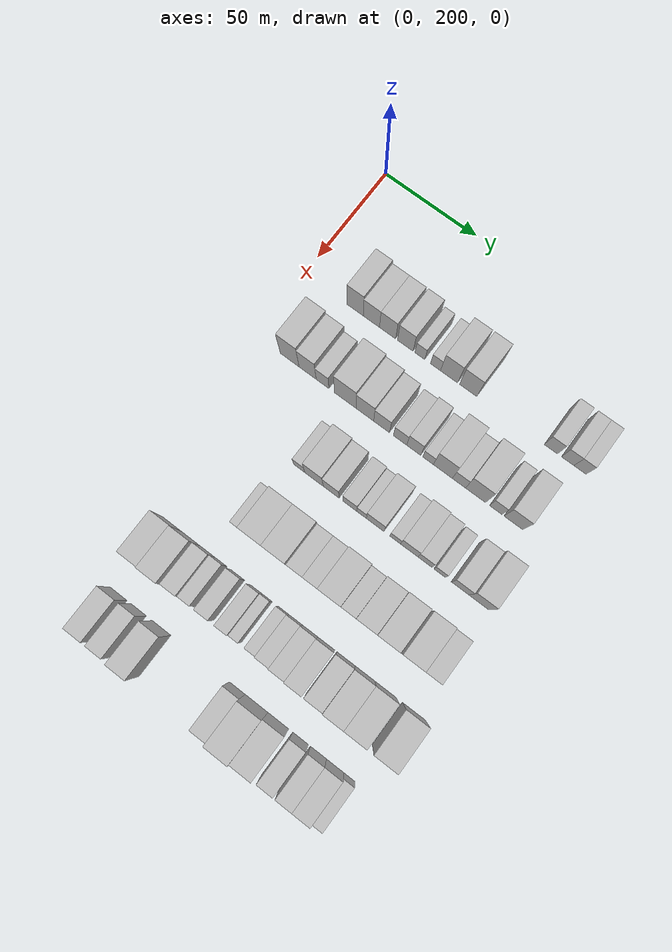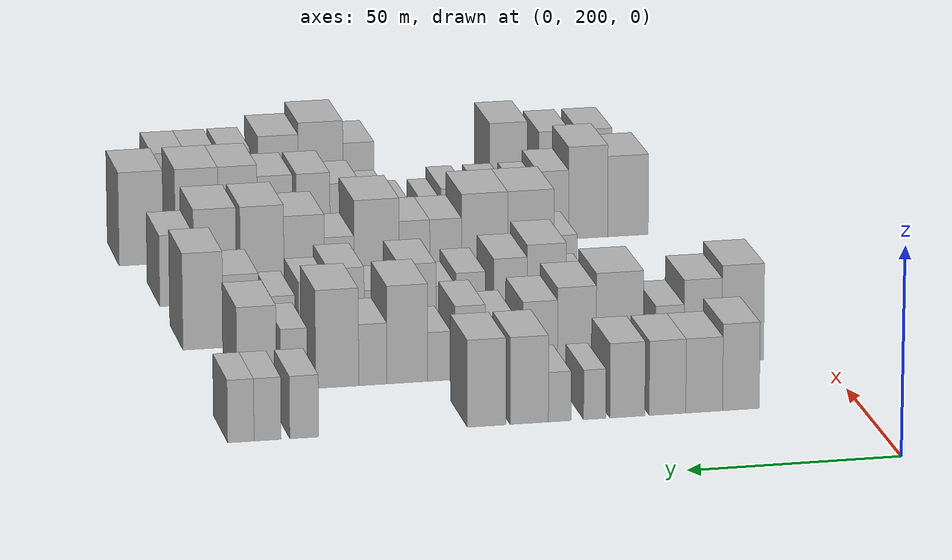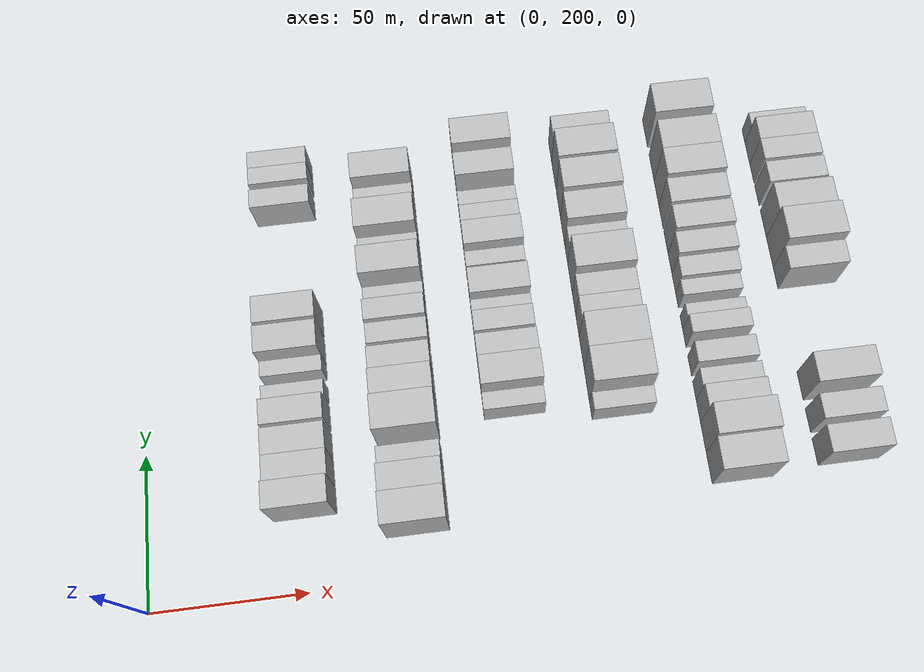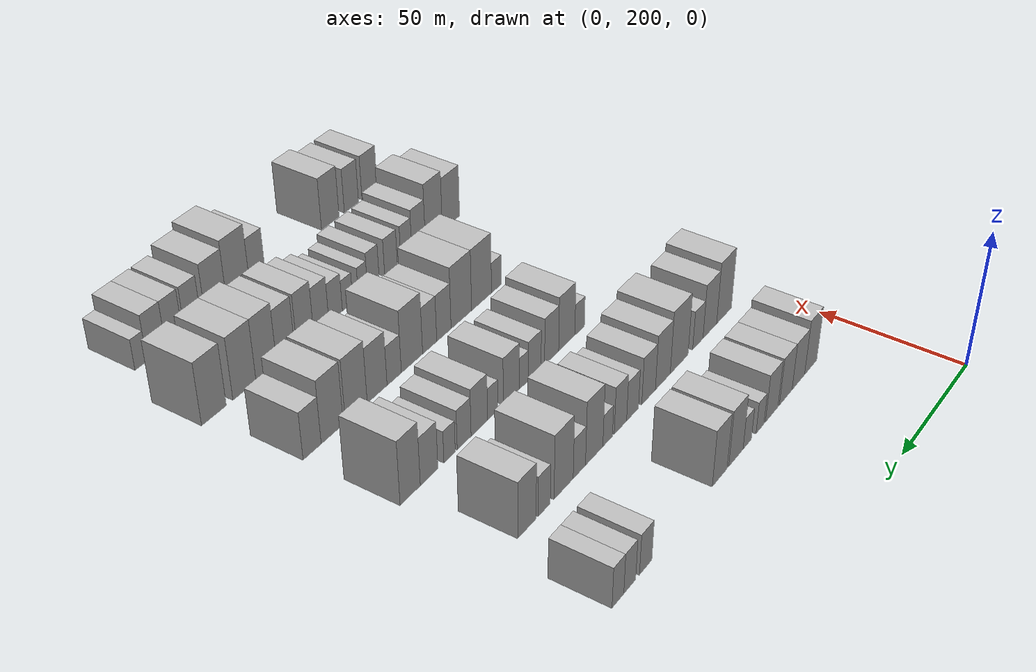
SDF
<sdf version="1.6">
 <world name="default">
  <model name="building_83">
   <static>1</static>
   <pose>50.0000 227.8729 0 0.000000 0.000000 0.000000</pose>
   <link name="link">
    <pose>0 0 10.50 0 0 0</pose>
    <collision name="collision"><geometry><box><size>20.0000 8.7429 21.0000</size></box></geometry></collision>
    <visual name="visual">
     <cast_shadows>0</cast_shadows>
     <geometry><box><size>20.0000 8.7429 21.0000</size></box></geometry>
     <material>
      <script>
       <uri>model://HANNAS_wall/materials/scripts</uri>
       <uri>model://HANNAS_wall/materials/textures</uri>
       <name>vrc/HANNAS_wall</name>
      </script>
     </material>
    </visual>
   </link>
  </model>
  <model name="building_84">
   <static>1</static>
   <pose>50.0000 236.6198 0 0.000000 0.000000 0.000000</pose>
   <link name="link">
    <pose>0 0 9.00 0 0 0</pose>
    <collision name="collision"><geometry><box><size>20.0000 8.7509 18.0000</size></box></geometry></collision>
    <visual name="visual">
     <cast_shadows>0</cast_shadows>
     <geometry><box><size>20.0000 8.7509 18.0000</size></box></geometry>
     <material>
      <script>
       <uri>model://HANNAS_wall/materials/scripts</uri>
       <uri>model://HANNAS_wall/materials/textures</uri>
       <name>vrc/HANNAS_wall</name>
      </script>
     </material>
    </visual>
   </link>
  </model>
  <model name="building_85">
   <static>1</static>
   <pose>50.0000 245.3287 0 0.000000 0.000000 0.000000</pose>
   <link name="link">
    <pose>0 0 9.00 0 0 0</pose>
    <collision name="collision"><geometry><box><size>20.0000 8.6668 18.0000</size></box></geometry></collision>
    <visual name="visual">
     <cast_shadows>0</cast_shadows>
     <geometry><box><size>20.0000 8.6668 18.0000</size></box></geometry>
     <material>
      <script>
       <uri>model://HANNAS_wall/materials/scripts</uri>
       <uri>model://HANNAS_wall/materials/textures</uri>
       <name>vrc/HANNAS_wall</name>
      </script>
     </material>
    </visual>
   </link>
  </model>
  <model name="building_86">
   <static>1</static>
   <pose>50.0000 254.8167 0 0.000000 0.000000 0.000000</pose>
   <link name="link">
    <pose>0 0 9.00 0 0 0</pose>
    <collision name="collision"><geometry><box><size>20.0000 8.3091 18.0000</size></box></geometry></collision>
    <visual name="visual">
     <cast_shadows>0</cast_shadows>
     <geometry><box><size>20.0000 8.3091 18.0000</size></box></geometry>
     <material>
      <script>
       <uri>model://HANNAS_wall/materials/scripts</uri>
       <uri>model://HANNAS_wall/materials/textures</uri>
       <name>vrc/HANNAS_wall</name>
      </script>
     </material>
    </visual>
   </link>
  </model>
  <model name="building_87">
   <static>1</static>
   <pose>50.0000 262.5719 0 0.000000 0.000000 0.000000</pose>
   <link name="link">
    <pose>0 0 6.00 0 0 0</pose>
    <collision name="collision"><geometry><box><size>20.0000 5.2014 12.0000</size></box></geometry></collision>
    <visual name="visual">
     <cast_shadows>0</cast_shadows>
     <geometry><box><size>20.0000 5.2014 12.0000</size></box></geometry>
     <material>
      <script>
       <uri>model://HANNAS_wall/materials/scripts</uri>
       <uri>model://HANNAS_wall/materials/textures</uri>
       <name>vrc/HANNAS_wall</name>
      </script>
     </material>
    </visual>
   </link>
  </model>
  <model name="building_88">
   <static>1</static>
   <pose>50.0000 270.8324 0 0.000000 0.000000 0.000000</pose>
   <link name="link">
    <pose>0 0 6.00 0 0 0</pose>
    <collision name="collision"><geometry><box><size>20.0000 5.3197 12.0000</size></box></geometry></collision>
    <visual name="visual">
     <cast_shadows>0</cast_shadows>
     <geometry><box><size>20.0000 5.3197 12.0000</size></box></geometry>
     <material>
      <script>
       <uri>model://HANNAS_wall/materials/scripts</uri>
       <uri>model://HANNAS_wall/materials/textures</uri>
       <name>vrc/HANNAS_wall</name>
      </script>
     </material>
    </visual>
   </link>
  </model>
  <model name="building_89">
   <static>1</static>
   <pose>50.0000 277.9955 0 0.000000 0.000000 0.000000</pose>
   <link name="link">
    <pose>0 0 10.50 0 0 0</pose>
    <collision name="collision"><geometry><box><size>20.0000 9.0065 21.0000</size></box></geometry></collision>
    <visual name="visual">
     <cast_shadows>0</cast_shadows>
     <geometry><box><size>20.0000 9.0065 21.0000</size></box></geometry>
     <material>
      <script>
       <uri>model://HANNAS_wall/materials/scripts</uri>
       <uri>model://HANNAS_wall/materials/textures</uri>
       <name>vrc/HANNAS_wall</name>
      </script>
     </material>
    </visual>
   </link>
  </model>
  <model name="building_90">
   <static>1</static>
   <pose>50.0000 288.0217 0 0.000000 0.000000 0.000000</pose>
   <link name="link">
    <pose>0 0 10.50 0 0 0</pose>
    <collision name="collision"><geometry><box><size>20.0000 9.0459 21.0000</size></box></geometry></collision>
    <visual name="visual">
     <cast_shadows>0</cast_shadows>
     <geometry><box><size>20.0000 9.0459 21.0000</size></box></geometry>
     <material>
      <script>
       <uri>model://HANNAS_wall/materials/scripts</uri>
       <uri>model://HANNAS_wall/materials/textures</uri>
       <name>vrc/HANNAS_wall</name>
      </script>
     </material>
    </visual>
   </link>
  </model>
  <model name="building_91">
   <static>1</static>
   <pose>50.0000 330.6306 0 0.000000 0.000000 0.000000</pose>
   <link name="link">
    <pose>0 0 7.50 0 0 0</pose>
    <collision name="collision"><geometry><box><size>20.0000 6.7240 15.0000</size></box></geometry></collision>
    <visual name="visual">
     <cast_shadows>0</cast_shadows>
     <geometry><box><size>20.0000 6.7240 15.0000</size></box></geometry>
     <material>
      <script>
       <uri>model://HANNAS_wall/materials/scripts</uri>
       <uri>model://HANNAS_wall/materials/textures</uri>
       <name>vrc/HANNAS_wall</name>
      </script>
     </material>
    </visual>
   </link>
  </model>
  <model name="building_92">
   <static>1</static>
   <pose>50.0000 339.1388 0 0.000000 0.000000 0.000000</pose>
   <link name="link">
    <pose>0 0 7.50 0 0 0</pose>
    <collision name="collision"><geometry><box><size>20.0000 6.2924 15.0000</size></box></geometry></collision>
    <visual name="visual">
     <cast_shadows>0</cast_shadows>
     <geometry><box><size>20.0000 6.2924 15.0000</size></box></geometry>
     <material>
      <script>
       <uri>model://HANNAS_wall/materials/scripts</uri>
       <uri>model://HANNAS_wall/materials/textures</uri>
       <name>vrc/HANNAS_wall</name>
      </script>
     </material>
    </visual>
   </link>
  </model>
  <model name="building_93">
   <static>1</static>
   <pose>50.0000 345.3433 0 0.000000 0.000000 0.000000</pose>
   <link name="link">
    <pose>0 0 7.50 0 0 0</pose>
    <collision name="collision"><geometry><box><size>20.0000 6.1166 15.0000</size></box></geometry></collision>
    <visual name="visual">
     <cast_shadows>0</cast_shadows>
     <geometry><box><size>20.0000 6.1166 15.0000</size></box></geometry>
     <material>
      <script>
       <uri>model://HANNAS_wall/materials/scripts</uri>
       <uri>model://HANNAS_wall/materials/textures</uri>
       <name>vrc/HANNAS_wall</name>
      </script>
     </material>
    </visual>
   </link>
  </model>
  <model name="building_198">
   <static>1</static>
   <pose>85.0000 219.0304 0 0.000000 0.000000 0.000000</pose>
   <link name="link">
    <pose>0 0 12.00 0 0 0</pose>
    <collision name="collision"><geometry><box><size>20.0000 10.1866 24.0000</size></box></geometry></collision>
    <visual name="visual">
     <cast_shadows>0</cast_shadows>
     <geometry><box><size>20.0000 10.1866 24.0000</size></box></geometry>
     <material>
      <script>
       <uri>model://HANNAS_wall/materials/scripts</uri>
       <uri>model://HANNAS_wall/materials/textures</uri>
       <name>vrc/HANNAS_wall</name>
      </script>
     </material>
    </visual>
   </link>
  </model>
  <model name="building_199">
   <static>1</static>
   <pose>85.0000 228.7237 0 0.000000 0.000000 0.000000</pose>
   <link name="link">
    <pose>0 0 10.50 0 0 0</pose>
    <collision name="collision"><geometry><box><size>20.0000 9.1999 21.0000</size></box></geometry></collision>
    <visual name="visual">
     <cast_shadows>0</cast_shadows>
     <geometry><box><size>20.0000 9.1999 21.0000</size></box></geometry>
     <material>
      <script>
       <uri>model://HANNAS_wall/materials/scripts</uri>
       <uri>model://HANNAS_wall/materials/textures</uri>
       <name>vrc/HANNAS_wall</name>
      </script>
     </material>
    </visual>
   </link>
  </model>
  <model name="building_200">
   <static>1</static>
   <pose>85.0000 236.7289 0 0.000000 0.000000 0.000000</pose>
   <link name="link">
    <pose>0 0 7.50 0 0 0</pose>
    <collision name="collision"><geometry><box><size>20.0000 6.8105 15.0000</size></box></geometry></collision>
    <visual name="visual">
     <cast_shadows>0</cast_shadows>
     <geometry><box><size>20.0000 6.8105 15.0000</size></box></geometry>
     <material>
      <script>
       <uri>model://HANNAS_wall/materials/scripts</uri>
       <uri>model://HANNAS_wall/materials/textures</uri>
       <name>vrc/HANNAS_wall</name>
      </script>
     </material>
    </visual>
   </link>
  </model>
  <model name="building_201">
   <static>1</static>
   <pose>85.0000 248.8374 0 0.000000 0.000000 0.000000</pose>
   <link name="link">
    <pose>0 0 12.00 0 0 0</pose>
    <collision name="collision"><geometry><box><size>20.0000 11.4065 24.0000</size></box></geometry></collision>
    <visual name="visual">
     <cast_shadows>0</cast_shadows>
     <geometry><box><size>20.0000 11.4065 24.0000</size></box></geometry>
     <material>
      <script>
       <uri>model://HANNAS_wall/materials/scripts</uri>
       <uri>model://HANNAS_wall/materials/textures</uri>
       <name>vrc/HANNAS_wall</name>
      </script>
     </material>
    </visual>
   </link>
  </model>
  <model name="building_202">
   <static>1</static>
   <pose>85.0000 259.1998 0 0.000000 0.000000 0.000000</pose>
   <link name="link">
    <pose>0 0 10.50 0 0 0</pose>
    <collision name="collision"><geometry><box><size>20.0000 9.3182 21.0000</size></box></geometry></collision>
    <visual name="visual">
     <cast_shadows>0</cast_shadows>
     <geometry><box><size>20.0000 9.3182 21.0000</size></box></geometry>
     <material>
      <script>
       <uri>model://HANNAS_wall/materials/scripts</uri>
       <uri>model://HANNAS_wall/materials/textures</uri>
       <name>vrc/HANNAS_wall</name>
      </script>
     </material>
    </visual>
   </link>
  </model>
  <model name="building_203">
   <static>1</static>
   <pose>85.0000 268.0156 0 0.000000 0.000000 0.000000</pose>
   <link name="link">
    <pose>0 0 9.00 0 0 0</pose>
    <collision name="collision"><geometry><box><size>20.0000 8.3135 18.0000</size></box></geometry></collision>
    <visual name="visual">
     <cast_shadows>0</cast_shadows>
     <geometry><box><size>20.0000 8.3135 18.0000</size></box></geometry>
     <material>
      <script>
       <uri>model://HANNAS_wall/materials/scripts</uri>
       <uri>model://HANNAS_wall/materials/textures</uri>
       <name>vrc/HANNAS_wall</name>
      </script>
     </material>
    </visual>
   </link>
  </model>
  <model name="building_204">
   <static>1</static>
   <pose>85.0000 277.6977 0 0.000000 0.000000 0.000000</pose>
   <link name="link">
    <pose>0 0 7.50 0 0 0</pose>
    <collision name="collision"><geometry><box><size>20.0000 7.0507 15.0000</size></box></geometry></collision>
    <visual name="visual">
     <cast_shadows>0</cast_shadows>
     <geometry><box><size>20.0000 7.0507 15.0000</size></box></geometry>
     <material>
      <script>
       <uri>model://HANNAS_wall/materials/scripts</uri>
       <uri>model://HANNAS_wall/materials/textures</uri>
       <name>vrc/HANNAS_wall</name>
      </script>
     </material>
    </visual>
   </link>
  </model>
  <model name="building_205">
   <static>1</static>
   <pose>85.0000 284.8364 0 0.000000 0.000000 0.000000</pose>
   <link name="link">
    <pose>0 0 9.00 0 0 0</pose>
    <collision name="collision"><geometry><box><size>20.0000 7.2267 18.0000</size></box></geometry></collision>
    <visual name="visual">
     <cast_shadows>0</cast_shadows>
     <geometry><box><size>20.0000 7.2267 18.0000</size></box></geometry>
     <material>
      <script>
       <uri>model://HANNAS_wall/materials/scripts</uri>
       <uri>model://HANNAS_wall/materials/textures</uri>
       <name>vrc/HANNAS_wall</name>
      </script>
     </material>
    </visual>
   </link>
  </model>
  <model name="building_206">
   <static>1</static>
   <pose>85.0000 292.2120 0 0.000000 0.000000 0.000000</pose>
   <link name="link">
    <pose>0 0 6.00 0 0 0</pose>
    <collision name="collision"><geometry><box><size>20.0000 5.5244 12.0000</size></box></geometry></collision>
    <visual name="visual">
     <cast_shadows>0</cast_shadows>
     <geometry><box><size>20.0000 5.5244 12.0000</size></box></geometry>
     <material>
      <script>
       <uri>model://HANNAS_wall/materials/scripts</uri>
       <uri>model://HANNAS_wall/materials/textures</uri>
       <name>vrc/HANNAS_wall</name>
      </script>
     </material>
    </visual>
   </link>
  </model>
  <model name="building_207">
   <static>1</static>
   <pose>85.0000 299.8462 0 0.000000 0.000000 0.000000</pose>
   <link name="link">
    <pose>0 0 12.00 0 0 0</pose>
    <collision name="collision"><geometry><box><size>20.0000 9.7439 24.0000</size></box></geometry></collision>
    <visual name="visual">
     <cast_shadows>0</cast_shadows>
     <geometry><box><size>20.0000 9.7439 24.0000</size></box></geometry>
     <material>
      <script>
       <uri>model://HANNAS_wall/materials/scripts</uri>
       <uri>model://HANNAS_wall/materials/textures</uri>
       <name>vrc/HANNAS_wall</name>
      </script>
     </material>
    </visual>
   </link>
  </model>
  <model name="building_208">
   <static>1</static>
   <pose>85.0000 308.0923 0 0.000000 0.000000 0.000000</pose>
   <link name="link">
    <pose>0 0 7.50 0 0 0</pose>
    <collision name="collision"><geometry><box><size>20.0000 6.7483 15.0000</size></box></geometry></collision>
    <visual name="visual">
     <cast_shadows>0</cast_shadows>
     <geometry><box><size>20.0000 6.7483 15.0000</size></box></geometry>
     <material>
      <script>
       <uri>model://HANNAS_wall/materials/scripts</uri>
       <uri>model://HANNAS_wall/materials/textures</uri>
       <name>vrc/HANNAS_wall</name>
      </script>
     </material>
    </visual>
   </link>
  </model>
  <model name="building_209">
   <static>1</static>
   <pose>85.0000 316.5838 0 0.000000 0.000000 0.000000</pose>
   <link name="link">
    <pose>0 0 12.00 0 0 0</pose>
    <collision name="collision"><geometry><box><size>20.0000 10.2347 24.0000</size></box></geometry></collision>
    <visual name="visual">
     <cast_shadows>0</cast_shadows>
     <geometry><box><size>20.0000 10.2347 24.0000</size></box></geometry>
     <material>
      <script>
       <uri>model://HANNAS_wall/materials/scripts</uri>
       <uri>model://HANNAS_wall/materials/textures</uri>
       <name>vrc/HANNAS_wall</name>
      </script>
     </material>
    </visual>
   </link>
  </model>
  <model name="building_210">
   <static>1</static>
   <pose>85.0000 326.8590 0 0.000000 0.000000 0.000000</pose>
   <link name="link">
    <pose>0 0 7.50 0 0 0</pose>
    <collision name="collision"><geometry><box><size>20.0000 6.3158 15.0000</size></box></geometry></collision>
    <visual name="visual">
     <cast_shadows>0</cast_shadows>
     <geometry><box><size>20.0000 6.3158 15.0000</size></box></geometry>
     <material>
      <script>
       <uri>model://HANNAS_wall/materials/scripts</uri>
       <uri>model://HANNAS_wall/materials/textures</uri>
       <name>vrc/HANNAS_wall</name>
      </script>
     </material>
    </visual>
   </link>
  </model>
  <model name="building_211">
   <static>1</static>
   <pose>85.0000 335.6885 0 0.000000 0.000000 0.000000</pose>
   <link name="link">
    <pose>0 0 10.50 0 0 0</pose>
    <collision name="collision"><geometry><box><size>20.0000 9.3431 21.0000</size></box></geometry></collision>
    <visual name="visual">
     <cast_shadows>0</cast_shadows>
     <geometry><box><size>20.0000 9.3431 21.0000</size></box></geometry>
     <material>
      <script>
       <uri>model://HANNAS_wall/materials/scripts</uri>
       <uri>model://HANNAS_wall/materials/textures</uri>
       <name>vrc/HANNAS_wall</name>
      </script>
     </material>
    </visual>
   </link>
  </model>
  <model name="building_324">
   <static>1</static>
   <pose>120.0000 251.2438 0 0.000000 0.000000 0.000000</pose>
   <link name="link">
    <pose>0 0 6.00 0 0 0</pose>
    <collision name="collision"><geometry><box><size>20.0000 5.8592 12.0000</size></box></geometry></collision>
    <visual name="visual">
     <cast_shadows>0</cast_shadows>
     <geometry><box><size>20.0000 5.8592 12.0000</size></box></geometry>
     <material>
      <script>
       <uri>model://HANNAS_wall/materials/scripts</uri>
       <uri>model://HANNAS_wall/materials/textures</uri>
       <name>vrc/HANNAS_wall</name>
      </script>
     </material>
    </visual>
   </link>
  </model>
  <model name="building_325">
   <static>1</static>
   <pose>120.0000 258.9953 0 0.000000 0.000000 0.000000</pose>
   <link name="link">
    <pose>0 0 10.50 0 0 0</pose>
    <collision name="collision"><geometry><box><size>20.0000 9.6438 21.0000</size></box></geometry></collision>
    <visual name="visual">
     <cast_shadows>0</cast_shadows>
     <geometry><box><size>20.0000 9.6438 21.0000</size></box></geometry>
     <material>
      <script>
       <uri>model://HANNAS_wall/materials/scripts</uri>
       <uri>model://HANNAS_wall/materials/textures</uri>
       <name>vrc/HANNAS_wall</name>
      </script>
     </material>
    </visual>
   </link>
  </model>
  <model name="building_326">
   <static>1</static>
   <pose>120.0000 267.9271 0 0.000000 0.000000 0.000000</pose>
   <link name="link">
    <pose>0 0 9.00 0 0 0</pose>
    <collision name="collision"><geometry><box><size>20.0000 8.2197 18.0000</size></box></geometry></collision>
    <visual name="visual">
     <cast_shadows>0</cast_shadows>
     <geometry><box><size>20.0000 8.2197 18.0000</size></box></geometry>
     <material>
      <script>
       <uri>model://HANNAS_wall/materials/scripts</uri>
       <uri>model://HANNAS_wall/materials/textures</uri>
       <name>vrc/HANNAS_wall</name>
      </script>
     </material>
    </visual>
   </link>
  </model>
  <model name="building_327">
   <static>1</static>
   <pose>120.0000 277.6466 0 0.000000 0.000000 0.000000</pose>
   <link name="link">
    <pose>0 0 7.50 0 0 0</pose>
    <collision name="collision"><geometry><box><size>20.0000 7.2193 15.0000</size></box></geometry></collision>
    <visual name="visual">
     <cast_shadows>0</cast_shadows>
     <geometry><box><size>20.0000 7.2193 15.0000</size></box></geometry>
     <material>
      <script>
       <uri>model://HANNAS_wall/materials/scripts</uri>
       <uri>model://HANNAS_wall/materials/textures</uri>
       <name>vrc/HANNAS_wall</name>
      </script>
     </material>
    </visual>
   </link>
  </model>
  <model name="building_328">
   <static>1</static>
   <pose>120.0000 283.7082 0 0.000000 0.000000 0.000000</pose>
   <link name="link">
    <pose>0 0 6.00 0 0 0</pose>
    <collision name="collision"><geometry><box><size>20.0000 4.9041 12.0000</size></box></geometry></collision>
    <visual name="visual">
     <cast_shadows>0</cast_shadows>
     <geometry><box><size>20.0000 4.9041 12.0000</size></box></geometry>
     <material>
      <script>
       <uri>model://HANNAS_wall/materials/scripts</uri>
       <uri>model://HANNAS_wall/materials/textures</uri>
       <name>vrc/HANNAS_wall</name>
      </script>
     </material>
    </visual>
   </link>
  </model>
  <model name="building_329">
   <static>1</static>
   <pose>120.0000 290.6523 0 0.000000 0.000000 0.000000</pose>
   <link name="link">
    <pose>0 0 9.00 0 0 0</pose>
    <collision name="collision"><geometry><box><size>20.0000 8.9841 18.0000</size></box></geometry></collision>
    <visual name="visual">
     <cast_shadows>0</cast_shadows>
     <geometry><box><size>20.0000 8.9841 18.0000</size></box></geometry>
     <material>
      <script>
       <uri>model://HANNAS_wall/materials/scripts</uri>
       <uri>model://HANNAS_wall/materials/textures</uri>
       <name>vrc/HANNAS_wall</name>
      </script>
     </material>
    </visual>
   </link>
  </model>
  <model name="building_330">
   <static>1</static>
   <pose>120.0000 300.8932 0 0.000000 0.000000 0.000000</pose>
   <link name="link">
    <pose>0 0 6.00 0 0 0</pose>
    <collision name="collision"><geometry><box><size>20.0000 5.4976 12.0000</size></box></geometry></collision>
    <visual name="visual">
     <cast_shadows>0</cast_shadows>
     <geometry><box><size>20.0000 5.4976 12.0000</size></box></geometry>
     <material>
      <script>
       <uri>model://HANNAS_wall/materials/scripts</uri>
       <uri>model://HANNAS_wall/materials/textures</uri>
       <name>vrc/HANNAS_wall</name>
      </script>
     </material>
    </visual>
   </link>
  </model>
  <model name="building_331">
   <static>1</static>
   <pose>120.0000 307.9859 0 0.000000 0.000000 0.000000</pose>
   <link name="link">
    <pose>0 0 9.00 0 0 0</pose>
    <collision name="collision"><geometry><box><size>20.0000 8.6878 18.0000</size></box></geometry></collision>
    <visual name="visual">
     <cast_shadows>0</cast_shadows>
     <geometry><box><size>20.0000 8.6878 18.0000</size></box></geometry>
     <material>
      <script>
       <uri>model://HANNAS_wall/materials/scripts</uri>
       <uri>model://HANNAS_wall/materials/textures</uri>
       <name>vrc/HANNAS_wall</name>
      </script>
     </material>
    </visual>
   </link>
  </model>
  <model name="building_332">
   <static>1</static>
   <pose>120.0000 315.9016 0 0.000000 0.000000 0.000000</pose>
   <link name="link">
    <pose>0 0 7.50 0 0 0</pose>
    <collision name="collision"><geometry><box><size>20.0000 7.1436 15.0000</size></box></geometry></collision>
    <visual name="visual">
     <cast_shadows>0</cast_shadows>
     <geometry><box><size>20.0000 7.1436 15.0000</size></box></geometry>
     <material>
      <script>
       <uri>model://HANNAS_wall/materials/scripts</uri>
       <uri>model://HANNAS_wall/materials/textures</uri>
       <name>vrc/HANNAS_wall</name>
      </script>
     </material>
    </visual>
   </link>
  </model>
  <model name="building_333">
   <static>1</static>
   <pose>120.0000 323.3427 0 0.000000 0.000000 0.000000</pose>
   <link name="link">
    <pose>0 0 6.00 0 0 0</pose>
    <collision name="collision"><geometry><box><size>20.0000 5.7386 12.0000</size></box></geometry></collision>
    <visual name="visual">
     <cast_shadows>0</cast_shadows>
     <geometry><box><size>20.0000 5.7386 12.0000</size></box></geometry>
     <material>
      <script>
       <uri>model://HANNAS_wall/materials/scripts</uri>
       <uri>model://HANNAS_wall/materials/textures</uri>
       <name>vrc/HANNAS_wall</name>
      </script>
     </material>
    </visual>
   </link>
  </model>
  <model name="building_334">
   <static>1</static>
   <pose>120.0000 333.5266 0 0.000000 0.000000 0.000000</pose>
   <link name="link">
    <pose>0 0 9.00 0 0 0</pose>
    <collision name="collision"><geometry><box><size>20.0000 8.6292 18.0000</size></box></geometry></collision>
    <visual name="visual">
     <cast_shadows>0</cast_shadows>
     <geometry><box><size>20.0000 8.6292 18.0000</size></box></geometry>
     <material>
      <script>
       <uri>model://HANNAS_wall/materials/scripts</uri>
       <uri>model://HANNAS_wall/materials/textures</uri>
       <name>vrc/HANNAS_wall</name>
      </script>
     </material>
    </visual>
   </link>
  </model>
  <model name="building_335">
   <static>1</static>
   <pose>120.0000 342.6895 0 0.000000 0.000000 0.000000</pose>
   <link name="link">
    <pose>0 0 12.00 0 0 0</pose>
    <collision name="collision"><geometry><box><size>20.0000 9.6968 24.0000</size></box></geometry></collision>
    <visual name="visual">
     <cast_shadows>0</cast_shadows>
     <geometry><box><size>20.0000 9.6968 24.0000</size></box></geometry>
     <material>
      <script>
       <uri>model://HANNAS_wall/materials/scripts</uri>
       <uri>model://HANNAS_wall/materials/textures</uri>
       <name>vrc/HANNAS_wall</name>
      </script>
     </material>
    </visual>
   </link>
  </model>
  <model name="building_452">
   <static>1</static>
   <pose>155.0000 246.8575 0 0.000000 0.000000 0.000000</pose>
   <link name="link">
    <pose>0 0 6.00 0 0 0</pose>
    <collision name="collision"><geometry><box><size>20.0000 5.8610 12.0000</size></box></geometry></collision>
    <visual name="visual">
     <cast_shadows>0</cast_shadows>
     <geometry><box><size>20.0000 5.8610 12.0000</size></box></geometry>
     <material>
      <script>
       <uri>model://HANNAS_wall/materials/scripts</uri>
       <uri>model://HANNAS_wall/materials/textures</uri>
       <name>vrc/HANNAS_wall</name>
      </script>
     </material>
    </visual>
   </link>
  </model>
  <model name="building_453">
   <static>1</static>
   <pose>155.0000 255.5591 0 0.000000 0.000000 0.000000</pose>
   <link name="link">
    <pose>0 0 12.00 0 0 0</pose>
    <collision name="collision"><geometry><box><size>20.0000 11.5423 24.0000</size></box></geometry></collision>
    <visual name="visual">
     <cast_shadows>0</cast_shadows>
     <geometry><box><size>20.0000 11.5423 24.0000</size></box></geometry>
     <material>
      <script>
       <uri>model://HANNAS_wall/materials/scripts</uri>
       <uri>model://HANNAS_wall/materials/textures</uri>
       <name>vrc/HANNAS_wall</name>
      </script>
     </material>
    </visual>
   </link>
  </model>
  <model name="building_454">
   <static>1</static>
   <pose>155.0000 267.1120 0 0.000000 0.000000 0.000000</pose>
   <link name="link">
    <pose>0 0 12.00 0 0 0</pose>
    <collision name="collision"><geometry><box><size>20.0000 11.5635 24.0000</size></box></geometry></collision>
    <visual name="visual">
     <cast_shadows>0</cast_shadows>
     <geometry><box><size>20.0000 11.5635 24.0000</size></box></geometry>
     <material>
      <script>
       <uri>model://HANNAS_wall/materials/scripts</uri>
       <uri>model://HANNAS_wall/materials/textures</uri>
       <name>vrc/HANNAS_wall</name>
      </script>
     </material>
    </visual>
   </link>
  </model>
  <model name="building_455">
   <static>1</static>
   <pose>155.0000 276.8514 0 0.000000 0.000000 0.000000</pose>
   <link name="link">
    <pose>0 0 9.00 0 0 0</pose>
    <collision name="collision"><geometry><box><size>20.0000 7.9153 18.0000</size></box></geometry></collision>
    <visual name="visual">
     <cast_shadows>0</cast_shadows>
     <geometry><box><size>20.0000 7.9153 18.0000</size></box></geometry>
     <material>
      <script>
       <uri>model://HANNAS_wall/materials/scripts</uri>
       <uri>model://HANNAS_wall/materials/textures</uri>
       <name>vrc/HANNAS_wall</name>
      </script>
     </material>
    </visual>
   </link>
  </model>
  <model name="building_456">
   <static>1</static>
   <pose>155.0000 284.6179 0 0.000000 0.000000 0.000000</pose>
   <link name="link">
    <pose>0 0 9.00 0 0 0</pose>
    <collision name="collision"><geometry><box><size>20.0000 7.6176 18.0000</size></box></geometry></collision>
    <visual name="visual">
     <cast_shadows>0</cast_shadows>
     <geometry><box><size>20.0000 7.6176 18.0000</size></box></geometry>
     <material>
      <script>
       <uri>model://HANNAS_wall/materials/scripts</uri>
       <uri>model://HANNAS_wall/materials/textures</uri>
       <name>vrc/HANNAS_wall</name>
      </script>
     </material>
    </visual>
   </link>
  </model>
  <model name="building_457">
   <static>1</static>
   <pose>155.0000 294.0281 0 0.000000 0.000000 0.000000</pose>
   <link name="link">
    <pose>0 0 12.00 0 0 0</pose>
    <collision name="collision"><geometry><box><size>20.0000 11.2028 24.0000</size></box></geometry></collision>
    <visual name="visual">
     <cast_shadows>0</cast_shadows>
     <geometry><box><size>20.0000 11.2028 24.0000</size></box></geometry>
     <material>
      <script>
       <uri>model://HANNAS_wall/materials/scripts</uri>
       <uri>model://HANNAS_wall/materials/textures</uri>
       <name>vrc/HANNAS_wall</name>
      </script>
     </material>
    </visual>
   </link>
  </model>
  <model name="building_458">
   <static>1</static>
   <pose>155.0000 303.3114 0 0.000000 0.000000 0.000000</pose>
   <link name="link">
    <pose>0 0 7.50 0 0 0</pose>
    <collision name="collision"><geometry><box><size>20.0000 7.3637 15.0000</size></box></geometry></collision>
    <visual name="visual">
     <cast_shadows>0</cast_shadows>
     <geometry><box><size>20.0000 7.3637 15.0000</size></box></geometry>
     <material>
      <script>
       <uri>model://HANNAS_wall/materials/scripts</uri>
       <uri>model://HANNAS_wall/materials/textures</uri>
       <name>vrc/HANNAS_wall</name>
      </script>
     </material>
    </visual>
   </link>
  </model>
  <model name="building_459">
   <static>1</static>
   <pose>155.0000 311.9893 0 0.000000 0.000000 0.000000</pose>
   <link name="link">
    <pose>0 0 10.50 0 0 0</pose>
    <collision name="collision"><geometry><box><size>20.0000 9.9922 21.0000</size></box></geometry></collision>
    <visual name="visual">
     <cast_shadows>0</cast_shadows>
     <geometry><box><size>20.0000 9.9922 21.0000</size></box></geometry>
     <material>
      <script>
       <uri>model://HANNAS_wall/materials/scripts</uri>
       <uri>model://HANNAS_wall/materials/textures</uri>
       <name>vrc/HANNAS_wall</name>
      </script>
     </material>
    </visual>
   </link>
  </model>
  <model name="building_460">
   <static>1</static>
   <pose>155.0000 322.3533 0 0.000000 0.000000 0.000000</pose>
   <link name="link">
    <pose>0 0 12.00 0 0 0</pose>
    <collision name="collision"><geometry><box><size>20.0000 10.7358 24.0000</size></box></geometry></collision>
    <visual name="visual">
     <cast_shadows>0</cast_shadows>
     <geometry><box><size>20.0000 10.7358 24.0000</size></box></geometry>
     <material>
      <script>
       <uri>model://HANNAS_wall/materials/scripts</uri>
       <uri>model://HANNAS_wall/materials/textures</uri>
       <name>vrc/HANNAS_wall</name>
      </script>
     </material>
    </visual>
   </link>
  </model>
  <model name="building_461">
   <static>1</static>
   <pose>155.0000 333.9739 0 0.000000 0.000000 0.000000</pose>
   <link name="link">
    <pose>0 0 12.00 0 0 0</pose>
    <collision name="collision"><geometry><box><size>20.0000 10.5054 24.0000</size></box></geometry></collision>
    <visual name="visual">
     <cast_shadows>0</cast_shadows>
     <geometry><box><size>20.0000 10.5054 24.0000</size></box></geometry>
     <material>
      <script>
       <uri>model://HANNAS_wall/materials/scripts</uri>
       <uri>model://HANNAS_wall/materials/textures</uri>
       <name>vrc/HANNAS_wall</name>
      </script>
     </material>
    </visual>
   </link>
  </model>
  <model name="building_462">
   <static>1</static>
   <pose>155.0000 343.4274 0 0.000000 0.000000 0.000000</pose>
   <link name="link">
    <pose>0 0 9.00 0 0 0</pose>
    <collision name="collision"><geometry><box><size>20.0000 8.4016 18.0000</size></box></geometry></collision>
    <visual name="visual">
     <cast_shadows>0</cast_shadows>
     <geometry><box><size>20.0000 8.4016 18.0000</size></box></geometry>
     <material>
      <script>
       <uri>model://HANNAS_wall/materials/scripts</uri>
       <uri>model://HANNAS_wall/materials/textures</uri>
       <name>vrc/HANNAS_wall</name>
      </script>
     </material>
    </visual>
   </link>
  </model>
  <model name="building_571">
   <static>1</static>
   <pose>190.0000 223.2886 0 0.000000 0.000000 0.000000</pose>
   <link name="link">
    <pose>0 0 10.50 0 0 0</pose>
    <collision name="collision"><geometry><box><size>20.0000 10.4464 21.0000</size></box></geometry></collision>
    <visual name="visual">
     <cast_shadows>0</cast_shadows>
     <geometry><box><size>20.0000 10.4464 21.0000</size></box></geometry>
     <material>
      <script>
       <uri>model://HANNAS_wall/materials/scripts</uri>
       <uri>model://HANNAS_wall/materials/textures</uri>
       <name>vrc/HANNAS_wall</name>
      </script>
     </material>
    </visual>
   </link>
  </model>
  <model name="building_572">
   <static>1</static>
   <pose>190.0000 233.5193 0 0.000000 0.000000 0.000000</pose>
   <link name="link">
    <pose>0 0 12.00 0 0 0</pose>
    <collision name="collision"><geometry><box><size>20.0000 10.0151 24.0000</size></box></geometry></collision>
    <visual name="visual">
     <cast_shadows>0</cast_shadows>
     <geometry><box><size>20.0000 10.0151 24.0000</size></box></geometry>
     <material>
      <script>
       <uri>model://HANNAS_wall/materials/scripts</uri>
       <uri>model://HANNAS_wall/materials/textures</uri>
       <name>vrc/HANNAS_wall</name>
      </script>
     </material>
    </visual>
   </link>
  </model>
  <model name="building_573">
   <static>1</static>
   <pose>190.0000 242.4250 0 0.000000 0.000000 0.000000</pose>
   <link name="link">
    <pose>0 0 9.00 0 0 0</pose>
    <collision name="collision"><geometry><box><size>20.0000 7.7962 18.0000</size></box></geometry></collision>
    <visual name="visual">
     <cast_shadows>0</cast_shadows>
     <geometry><box><size>20.0000 7.7962 18.0000</size></box></geometry>
     <material>
      <script>
       <uri>model://HANNAS_wall/materials/scripts</uri>
       <uri>model://HANNAS_wall/materials/textures</uri>
       <name>vrc/HANNAS_wall</name>
      </script>
     </material>
    </visual>
   </link>
  </model>
  <model name="building_574">
   <static>1</static>
   <pose>190.0000 249.4430 0 0.000000 0.000000 0.000000</pose>
   <link name="link">
    <pose>0 0 7.50 0 0 0</pose>
    <collision name="collision"><geometry><box><size>20.0000 6.2399 15.0000</size></box></geometry></collision>
    <visual name="visual">
     <cast_shadows>0</cast_shadows>
     <geometry><box><size>20.0000 6.2399 15.0000</size></box></geometry>
     <material>
      <script>
       <uri>model://HANNAS_wall/materials/scripts</uri>
       <uri>model://HANNAS_wall/materials/textures</uri>
       <name>vrc/HANNAS_wall</name>
      </script>
     </material>
    </visual>
   </link>
  </model>
  <model name="building_575">
   <static>1</static>
   <pose>190.0000 258.1125 0 0.000000 0.000000 0.000000</pose>
   <link name="link">
    <pose>0 0 7.50 0 0 0</pose>
    <collision name="collision"><geometry><box><size>20.0000 7.0991 15.0000</size></box></geometry></collision>
    <visual name="visual">
     <cast_shadows>0</cast_shadows>
     <geometry><box><size>20.0000 7.0991 15.0000</size></box></geometry>
     <material>
      <script>
       <uri>model://HANNAS_wall/materials/scripts</uri>
       <uri>model://HANNAS_wall/materials/textures</uri>
       <name>vrc/HANNAS_wall</name>
      </script>
     </material>
    </visual>
   </link>
  </model>
  <model name="building_576">
   <static>1</static>
   <pose>190.0000 267.8575 0 0.000000 0.000000 0.000000</pose>
   <link name="link">
    <pose>0 0 7.50 0 0 0</pose>
    <collision name="collision"><geometry><box><size>20.0000 6.3910 15.0000</size></box></geometry></collision>
    <visual name="visual">
     <cast_shadows>0</cast_shadows>
     <geometry><box><size>20.0000 6.3910 15.0000</size></box></geometry>
     <material>
      <script>
       <uri>model://HANNAS_wall/materials/scripts</uri>
       <uri>model://HANNAS_wall/materials/textures</uri>
       <name>vrc/HANNAS_wall</name>
      </script>
     </material>
    </visual>
   </link>
  </model>
  <model name="building_577">
   <static>1</static>
   <pose>190.0000 273.5086 0 0.000000 0.000000 0.000000</pose>
   <link name="link">
    <pose>0 0 6.00 0 0 0</pose>
    <collision name="collision"><geometry><box><size>20.0000 4.9113 12.0000</size></box></geometry></collision>
    <visual name="visual">
     <cast_shadows>0</cast_shadows>
     <geometry><box><size>20.0000 4.9113 12.0000</size></box></geometry>
     <material>
      <script>
       <uri>model://HANNAS_wall/materials/scripts</uri>
       <uri>model://HANNAS_wall/materials/textures</uri>
       <name>vrc/HANNAS_wall</name>
      </script>
     </material>
    </visual>
   </link>
  </model>
  <model name="building_578">
   <static>1</static>
   <pose>190.0000 281.7155 0 0.000000 0.000000 0.000000</pose>
   <link name="link">
    <pose>0 0 6.00 0 0 0</pose>
    <collision name="collision"><geometry><box><size>20.0000 5.5025 12.0000</size></box></geometry></collision>
    <visual name="visual">
     <cast_shadows>0</cast_shadows>
     <geometry><box><size>20.0000 5.5025 12.0000</size></box></geometry>
     <material>
      <script>
       <uri>model://HANNAS_wall/materials/scripts</uri>
       <uri>model://HANNAS_wall/materials/textures</uri>
       <name>vrc/HANNAS_wall</name>
      </script>
     </material>
    </visual>
   </link>
  </model>
  <model name="building_579">
   <static>1</static>
   <pose>190.0000 287.9847 0 0.000000 0.000000 0.000000</pose>
   <link name="link">
    <pose>0 0 7.50 0 0 0</pose>
    <collision name="collision"><geometry><box><size>20.0000 7.0359 15.0000</size></box></geometry></collision>
    <visual name="visual">
     <cast_shadows>0</cast_shadows>
     <geometry><box><size>20.0000 7.0359 15.0000</size></box></geometry>
     <material>
      <script>
       <uri>model://HANNAS_wall/materials/scripts</uri>
       <uri>model://HANNAS_wall/materials/textures</uri>
       <name>vrc/HANNAS_wall</name>
      </script>
     </material>
    </visual>
   </link>
  </model>
  <model name="building_580">
   <static>1</static>
   <pose>190.0000 295.3783 0 0.000000 0.000000 0.000000</pose>
   <link name="link">
    <pose>0 0 9.00 0 0 0</pose>
    <collision name="collision"><geometry><box><size>20.0000 7.7513 18.0000</size></box></geometry></collision>
    <visual name="visual">
     <cast_shadows>0</cast_shadows>
     <geometry><box><size>20.0000 7.7513 18.0000</size></box></geometry>
     <material>
      <script>
       <uri>model://HANNAS_wall/materials/scripts</uri>
       <uri>model://HANNAS_wall/materials/textures</uri>
       <name>vrc/HANNAS_wall</name>
      </script>
     </material>
    </visual>
   </link>
  </model>
  <model name="building_581">
   <static>1</static>
   <pose>190.0000 303.4772 0 0.000000 0.000000 0.000000</pose>
   <link name="link">
    <pose>0 0 10.50 0 0 0</pose>
    <collision name="collision"><geometry><box><size>20.0000 8.4464 21.0000</size></box></geometry></collision>
    <visual name="visual">
     <cast_shadows>0</cast_shadows>
     <geometry><box><size>20.0000 8.4464 21.0000</size></box></geometry>
     <material>
      <script>
       <uri>model://HANNAS_wall/materials/scripts</uri>
       <uri>model://HANNAS_wall/materials/textures</uri>
       <name>vrc/HANNAS_wall</name>
      </script>
     </material>
    </visual>
   </link>
  </model>
  <model name="building_582">
   <static>1</static>
   <pose>190.0000 313.1377 0 0.000000 0.000000 0.000000</pose>
   <link name="link">
    <pose>0 0 10.50 0 0 0</pose>
    <collision name="collision"><geometry><box><size>20.0000 8.8747 21.0000</size></box></geometry></collision>
    <visual name="visual">
     <cast_shadows>0</cast_shadows>
     <geometry><box><size>20.0000 8.8747 21.0000</size></box></geometry>
     <material>
      <script>
       <uri>model://HANNAS_wall/materials/scripts</uri>
       <uri>model://HANNAS_wall/materials/textures</uri>
       <name>vrc/HANNAS_wall</name>
      </script>
     </material>
    </visual>
   </link>
  </model>
  <model name="building_583">
   <static>1</static>
   <pose>190.0000 322.5102 0 0.000000 0.000000 0.000000</pose>
   <link name="link">
    <pose>0 0 12.00 0 0 0</pose>
    <collision name="collision"><geometry><box><size>20.0000 9.8702 24.0000</size></box></geometry></collision>
    <visual name="visual">
     <cast_shadows>0</cast_shadows>
     <geometry><box><size>20.0000 9.8702 24.0000</size></box></geometry>
     <material>
      <script>
       <uri>model://HANNAS_wall/materials/scripts</uri>
       <uri>model://HANNAS_wall/materials/textures</uri>
       <name>vrc/HANNAS_wall</name>
      </script>
     </material>
    </visual>
   </link>
  </model>
  <model name="building_584">
   <static>1</static>
   <pose>190.0000 332.8246 0 0.000000 0.000000 0.000000</pose>
   <link name="link">
    <pose>0 0 12.00 0 0 0</pose>
    <collision name="collision"><geometry><box><size>20.0000 10.7587 24.0000</size></box></geometry></collision>
    <visual name="visual">
     <cast_shadows>0</cast_shadows>
     <geometry><box><size>20.0000 10.7587 24.0000</size></box></geometry>
     <material>
      <script>
       <uri>model://HANNAS_wall/materials/scripts</uri>
       <uri>model://HANNAS_wall/materials/textures</uri>
       <name>vrc/HANNAS_wall</name>
      </script>
     </material>
    </visual>
   </link>
  </model>
  <model name="building_585">
   <static>1</static>
   <pose>190.0000 346.7583 0 0.000000 0.000000 0.000000</pose>
   <link name="link">
    <pose>0 0 12.00 0 0 0</pose>
    <collision name="collision"><geometry><box><size>20.0000 11.1088 24.0000</size></box></geometry></collision>
    <visual name="visual">
     <cast_shadows>0</cast_shadows>
     <geometry><box><size>20.0000 11.1088 24.0000</size></box></geometry>
     <material>
      <script>
       <uri>model://HANNAS_wall/materials/scripts</uri>
       <uri>model://HANNAS_wall/materials/textures</uri>
       <name>vrc/HANNAS_wall</name>
      </script>
     </material>
    </visual>
   </link>
  </model>
  <model name="building_694">
   <static>1</static>
   <pose>225.0000 224.1271 0 0.000000 0.000000 0.000000</pose>
   <link name="link">
    <pose>0 0 9.00 0 0 0</pose>
    <collision name="collision"><geometry><box><size>20.0000 8.9270 18.0000</size></box></geometry></collision>
    <visual name="visual">
     <cast_shadows>0</cast_shadows>
     <geometry><box><size>20.0000 8.9270 18.0000</size></box></geometry>
     <material>
      <script>
       <uri>model://HANNAS_wall/materials/scripts</uri>
       <uri>model://HANNAS_wall/materials/textures</uri>
       <name>vrc/HANNAS_wall</name>
      </script>
     </material>
    </visual>
   </link>
  </model>
  <model name="building_695">
   <static>1</static>
   <pose>225.0000 234.6553 0 0.000000 0.000000 0.000000</pose>
   <link name="link">
    <pose>0 0 9.00 0 0 0</pose>
    <collision name="collision"><geometry><box><size>20.0000 8.1295 18.0000</size></box></geometry></collision>
    <visual name="visual">
     <cast_shadows>0</cast_shadows>
     <geometry><box><size>20.0000 8.1295 18.0000</size></box></geometry>
     <material>
      <script>
       <uri>model://HANNAS_wall/materials/scripts</uri>
       <uri>model://HANNAS_wall/materials/textures</uri>
       <name>vrc/HANNAS_wall</name>
      </script>
     </material>
    </visual>
   </link>
  </model>
  <model name="building_696">
   <static>1</static>
   <pose>225.0000 246.6283 0 0.000000 0.000000 0.000000</pose>
   <link name="link">
    <pose>0 0 10.50 0 0 0</pose>
    <collision name="collision"><geometry><box><size>20.0000 9.8164 21.0000</size></box></geometry></collision>
    <visual name="visual">
     <cast_shadows>0</cast_shadows>
     <geometry><box><size>20.0000 9.8164 21.0000</size></box></geometry>
     <material>
      <script>
       <uri>model://HANNAS_wall/materials/scripts</uri>
       <uri>model://HANNAS_wall/materials/textures</uri>
       <name>vrc/HANNAS_wall</name>
      </script>
     </material>
    </visual>
   </link>
  </model>
  <model name="building_697">
   <static>1</static>
   <pose>225.0000 285.5605 0 0.000000 0.000000 0.000000</pose>
   <link name="link">
    <pose>0 0 9.00 0 0 0</pose>
    <collision name="collision"><geometry><box><size>20.0000 8.0160 18.0000</size></box></geometry></collision>
    <visual name="visual">
     <cast_shadows>0</cast_shadows>
     <geometry><box><size>20.0000 8.0160 18.0000</size></box></geometry>
     <material>
      <script>
       <uri>model://HANNAS_wall/materials/scripts</uri>
       <uri>model://HANNAS_wall/materials/textures</uri>
       <name>vrc/HANNAS_wall</name>
      </script>
     </material>
    </visual>
   </link>
  </model>
  <model name="building_698">
   <static>1</static>
   <pose>225.0000 295.3137 0 0.000000 0.000000 0.000000</pose>
   <link name="link">
    <pose>0 0 12.00 0 0 0</pose>
    <collision name="collision"><geometry><box><size>20.0000 11.4902 24.0000</size></box></geometry></collision>
    <visual name="visual">
     <cast_shadows>0</cast_shadows>
     <geometry><box><size>20.0000 11.4902 24.0000</size></box></geometry>
     <material>
      <script>
       <uri>model://HANNAS_wall/materials/scripts</uri>
       <uri>model://HANNAS_wall/materials/textures</uri>
       <name>vrc/HANNAS_wall</name>
      </script>
     </material>
    </visual>
   </link>
  </model>
  <model name="building_699">
   <static>1</static>
   <pose>225.0000 306.2342 0 0.000000 0.000000 0.000000</pose>
   <link name="link">
    <pose>0 0 10.50 0 0 0</pose>
    <collision name="collision"><geometry><box><size>20.0000 10.3507 21.0000</size></box></geometry></collision>
    <visual name="visual">
     <cast_shadows>0</cast_shadows>
     <geometry><box><size>20.0000 10.3507 21.0000</size></box></geometry>
     <material>
      <script>
       <uri>model://HANNAS_wall/materials/scripts</uri>
       <uri>model://HANNAS_wall/materials/textures</uri>
       <name>vrc/HANNAS_wall</name>
      </script>
     </material>
    </visual>
   </link>
  </model>
  <model name="building_700">
   <static>1</static>
   <pose>225.0000 317.2873 0 0.000000 0.000000 0.000000</pose>
   <link name="link">
    <pose>0 0 9.00 0 0 0</pose>
    <collision name="collision"><geometry><box><size>20.0000 7.7554 18.0000</size></box></geometry></collision>
    <visual name="visual">
     <cast_shadows>0</cast_shadows>
     <geometry><box><size>20.0000 7.7554 18.0000</size></box></geometry>
     <material>
      <script>
       <uri>model://HANNAS_wall/materials/scripts</uri>
       <uri>model://HANNAS_wall/materials/textures</uri>
       <name>vrc/HANNAS_wall</name>
      </script>
     </material>
    </visual>
   </link>
  </model>
  <model name="building_701">
   <static>1</static>
   <pose>225.0000 326.0831 0 0.000000 0.000000 0.000000</pose>
   <link name="link">
    <pose>0 0 9.00 0 0 0</pose>
    <collision name="collision"><geometry><box><size>20.0000 7.8363 18.0000</size></box></geometry></collision>
    <visual name="visual">
     <cast_shadows>0</cast_shadows>
     <geometry><box><size>20.0000 7.8363 18.0000</size></box></geometry>
     <material>
      <script>
       <uri>model://HANNAS_wall/materials/scripts</uri>
       <uri>model://HANNAS_wall/materials/textures</uri>
       <name>vrc/HANNAS_wall</name>
      </script>
     </material>
    </visual>
   </link>
  </model>
  <model name="building_702">
   <static>1</static>
   <pose>225.0000 334.2457 0 0.000000 0.000000 0.000000</pose>
   <link name="link">
    <pose>0 0 9.00 0 0 0</pose>
    <collision name="collision"><geometry><box><size>20.0000 8.4888 18.0000</size></box></geometry></collision>
    <visual name="visual">
     <cast_shadows>0</cast_shadows>
     <geometry><box><size>20.0000 8.4888 18.0000</size></box></geometry>
     <material>
      <script>
       <uri>model://HANNAS_wall/materials/scripts</uri>
       <uri>model://HANNAS_wall/materials/textures</uri>
       <name>vrc/HANNAS_wall</name>
      </script>
     </material>
    </visual>
   </link>
  </model>
  <model name="building_703">
   <static>1</static>
   <pose>225.0000 341.1756 0 0.000000 0.000000 0.000000</pose>
   <link name="link">
    <pose>0 0 6.00 0 0 0</pose>
    <collision name="collision"><geometry><box><size>20.0000 5.3710 12.0000</size></box></geometry></collision>
    <visual name="visual">
     <cast_shadows>0</cast_shadows>
     <geometry><box><size>20.0000 5.3710 12.0000</size></box></geometry>
     <material>
      <script>
       <uri>model://HANNAS_wall/materials/scripts</uri>
       <uri>model://HANNAS_wall/materials/textures</uri>
       <name>vrc/HANNAS_wall</name>
      </script>
     </material>
    </visual>
   </link>
  </model>
 </world>
</sdf>
